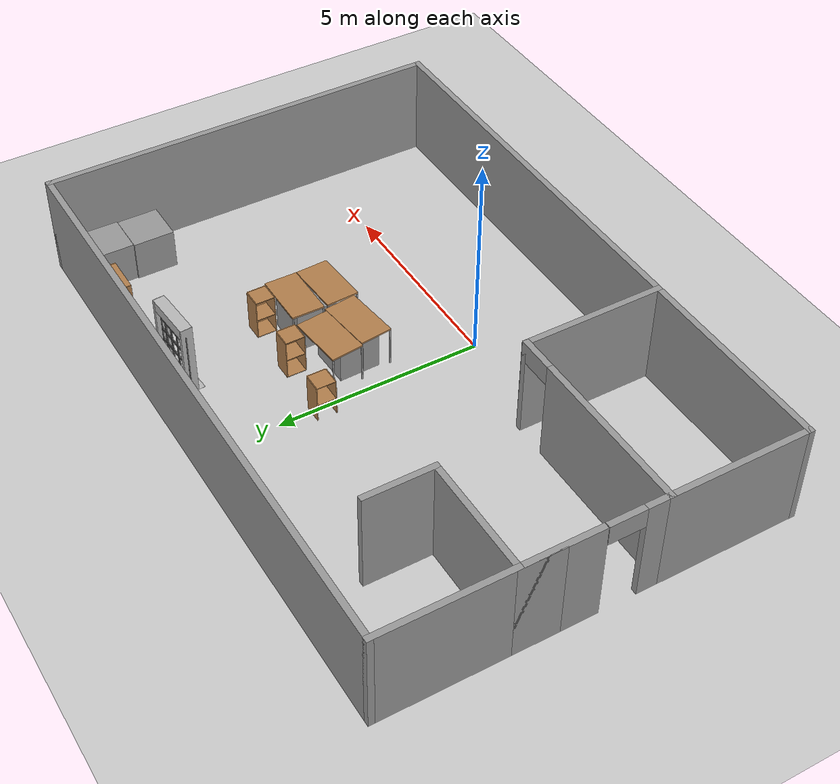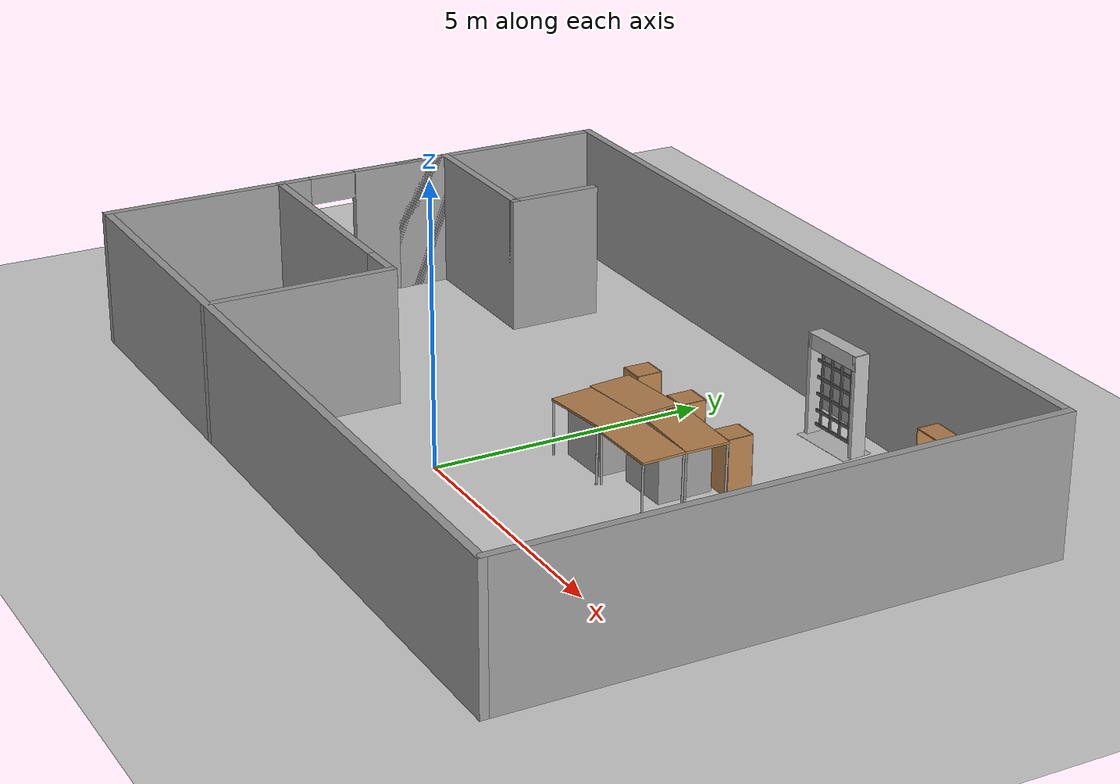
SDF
<sdf version="1.6">
 <world name="default">
  <model name="ground_plane">
   <static>1</static>
   <link name="link">
    <collision name="collision">
     <geometry><plane><normal>0 0 1</normal><size>100 100</size></plane></geometry>
     <surface><friction><ode><mu>100</mu><mu2>50</mu2></ode></friction></surface>
    </collision>
    <visual name="visual">
     <cast_shadows>0</cast_shadows>
     <geometry><plane><normal>0 0 1</normal><size>100 100</size></plane></geometry>
     <material>
      <script><uri>file://media/materials/scripts/gazebo.material</uri><name>Gazebo/Grey</name></script>
     </material>
    </visual>
   </link>
  </model>
  <model name="table_7_clone_0">
   <static>0</static>
   <link name="link">
    <collision name="surface">
     <pose>0 0 1 0 -0 0</pose>
     <geometry><box><size>1.5 0.8 0.03</size></box></geometry>
     <surface><friction><ode><mu>0.6</mu><mu2>0.6</mu2></ode></friction></surface>
    </collision>
    <visual name="visual1">
     <pose>0 0 1 0 -0 0</pose>
     <geometry><box><size>1.4 0.8 0.04</size></box></geometry>
     <material>
      <script><uri>file://media/materials/scripts/gazebo.material</uri><name>Gazebo/Wood</name></script>
     </material>
    </visual>
    <collision name="front_left_leg">
     <pose>0.68 0.38 0.5 0 -0 0</pose>
     <geometry><cylinder><radius>0.02</radius><length>1</length></cylinder></geometry>
    </collision>
    <visual name="front_left_leg">
     <pose>0.68 0.38 0.5 0 -0 0</pose>
     <geometry><cylinder><radius>0.02</radius><length>1</length></cylinder></geometry>
     <material>
      <script><uri>file://media/materials/scripts/gazebo.material</uri><name>Gazebo/Grey</name></script>
     </material>
    </visual>
    <collision name="front_right_leg">
     <pose>0.68 -0.38 0.5 0 -0 0</pose>
     <geometry><cylinder><radius>0.02</radius><length>1</length></cylinder></geometry>
    </collision>
    <visual name="front_right_leg">
     <pose>0.68 -0.38 0.5 0 -0 0</pose>
     <geometry><cylinder><radius>0.02</radius><length>1</length></cylinder></geometry>
     <material>
      <script><uri>file://media/materials/scripts/gazebo.material</uri><name>Gazebo/Grey</name></script>
     </material>
    </visual>
    <collision name="back_right_leg">
     <pose>-0.68 -0.38 0.5 0 -0 0</pose>
     <geometry><cylinder><radius>0.02</radius><length>1</length></cylinder></geometry>
    </collision>
    <visual name="back_right_leg">
     <pose>-0.68 -0.38 0.5 0 -0 0</pose>
     <geometry><cylinder><radius>0.02</radius><length>1</length></cylinder></geometry>
     <material>
      <script><uri>file://media/materials/scripts/gazebo.material</uri><name>Gazebo/Grey</name></script>
     </material>
    </visual>
    <collision name="back_left_leg">
     <pose>-0.68 0.38 0.5 0 -0 0</pose>
     <geometry><cylinder><radius>0.02</radius><length>1</length></cylinder></geometry>
    </collision>
    <visual name="back_left_leg">
     <pose>-0.68 0.38 0.5 0 -0 0</pose>
     <geometry><cylinder><radius>0.02</radius><length>1</length></cylinder></geometry>
     <material>
      <script><uri>file://media/materials/scripts/gazebo.material</uri><name>Gazebo/Grey</name></script>
     </material>
    </visual>
    <inertial>
     <inertia><ixx>1</ixx><ixy>0</ixy><ixz>0</ixz><iyy>1</iyy><iyz>0</iyz><izz>1</izz></inertia>
     <mass>1</mass>
    </inertial>
   </link>
   <pose>0.985844 3.1842 0.014959 -0.000606 1.8e-05 0.105898</pose>
  </model>
  <model name="table_7_clone_1">
   <static>0</static>
   <link name="link">
    <collision name="surface">
     <pose>0 0 1 0 -0 0</pose>
     <geometry><box><size>1.5 0.8 0.03</size></box></geometry>
     <surface><friction><ode><mu>0.6</mu><mu2>0.6</mu2></ode></friction></surface>
    </collision>
    <visual name="visual1">
     <pose>0 0 1 0 -0 0</pose>
     <geometry><box><size>1.4 0.8 0.04</size></box></geometry>
     <material>
      <script><uri>file://media/materials/scripts/gazebo.material</uri><name>Gazebo/Wood</name></script>
     </material>
    </visual>
    <collision name="front_left_leg">
     <pose>0.68 0.38 0.5 0 -0 0</pose>
     <geometry><cylinder><radius>0.02</radius><length>1</length></cylinder></geometry>
    </collision>
    <visual name="front_left_leg">
     <pose>0.68 0.38 0.5 0 -0 0</pose>
     <geometry><cylinder><radius>0.02</radius><length>1</length></cylinder></geometry>
     <material>
      <script><uri>file://media/materials/scripts/gazebo.material</uri><name>Gazebo/Grey</name></script>
     </material>
    </visual>
    <collision name="front_right_leg">
     <pose>0.68 -0.38 0.5 0 -0 0</pose>
     <geometry><cylinder><radius>0.02</radius><length>1</length></cylinder></geometry>
    </collision>
    <visual name="front_right_leg">
     <pose>0.68 -0.38 0.5 0 -0 0</pose>
     <geometry><cylinder><radius>0.02</radius><length>1</length></cylinder></geometry>
     <material>
      <script><uri>file://media/materials/scripts/gazebo.material</uri><name>Gazebo/Grey</name></script>
     </material>
    </visual>
    <collision name="back_right_leg">
     <pose>-0.68 -0.38 0.5 0 -0 0</pose>
     <geometry><cylinder><radius>0.02</radius><length>1</length></cylinder></geometry>
    </collision>
    <visual name="back_right_leg">
     <pose>-0.68 -0.38 0.5 0 -0 0</pose>
     <geometry><cylinder><radius>0.02</radius><length>1</length></cylinder></geometry>
     <material>
      <script><uri>file://media/materials/scripts/gazebo.material</uri><name>Gazebo/Grey</name></script>
     </material>
    </visual>
    <collision name="back_left_leg">
     <pose>-0.68 0.38 0.5 0 -0 0</pose>
     <geometry><cylinder><radius>0.02</radius><length>1</length></cylinder></geometry>
    </collision>
    <visual name="back_left_leg">
     <pose>-0.68 0.38 0.5 0 -0 0</pose>
     <geometry><cylinder><radius>0.02</radius><length>1</length></cylinder></geometry>
     <material>
      <script><uri>file://media/materials/scripts/gazebo.material</uri><name>Gazebo/Grey</name></script>
     </material>
    </visual>
    <inertial>
     <inertia><ixx>1</ixx><ixy>0</ixy><ixz>0</ixz><iyy>1</iyy><iyz>0</iyz><izz>1</izz></inertia>
     <mass>1</mass>
    </inertial>
   </link>
   <pose>1.1351 2.39038 0.014996 7e-06 3e-06 0.114239</pose>
  </model>
  <model name="bookshelf">
   <static>1</static>
   <link name="link">
    <inertial><mass>1</mass></inertial>
    <collision name="back">
     <pose>0 0.005 0.6 0 -0 0</pose>
     <geometry><box><size>0.9 0.01 1.2</size></box></geometry>
    </collision>
    <visual name="visual1">
     <pose>0 0.005 0.6 0 -0 0</pose>
     <geometry><box><size>0.9 0.01 1.2</size></box></geometry>
     <material>
      <script><uri>file://media/materials/scripts/gazebo.material</uri><name>Gazebo/Wood</name></script>
     </material>
    </visual>
    <collision name="left_side">
     <pose>0.45 -0.195 0.6 0 -0 0</pose>
     <geometry><box><size>0.02 0.4 1.2</size></box></geometry>
    </collision>
    <visual name="visual2">
     <pose>0.45 -0.195 0.6 0 -0 0</pose>
     <geometry><box><size>0.02 0.4 1.2</size></box></geometry>
     <material>
      <script><uri>file://media/materials/scripts/gazebo.material</uri><name>Gazebo/Wood</name></script>
     </material>
    </visual>
    <collision name="right_side">
     <pose>-0.45 -0.195 0.6 0 -0 0</pose>
     <geometry><box><size>0.02 0.4 1.2</size></box></geometry>
    </collision>
    <visual name="visual3">
     <pose>-0.45 -0.195 0.6 0 -0 0</pose>
     <geometry><box><size>0.02 0.4 1.2</size></box></geometry>
     <material>
      <script><uri>file://media/materials/scripts/gazebo.material</uri><name>Gazebo/Wood</name></script>
     </material>
    </visual>
    <collision name="bottom">
     <pose>0 -0.195 0.03 0 -0 0</pose>
     <geometry><box><size>0.88 0.4 0.06</size></box></geometry>
    </collision>
    <visual name="visual4">
     <pose>0 -0.195 0.03 0 -0 0</pose>
     <geometry><box><size>0.88 0.4 0.06</size></box></geometry>
     <material>
      <script><uri>file://media/materials/scripts/gazebo.material</uri><name>Gazebo/Wood</name></script>
     </material>
    </visual>
    <collision name="top">
     <pose>0 -0.195 1.19 0 -0 0</pose>
     <geometry><box><size>0.88 0.4 0.02</size></box></geometry>
    </collision>
    <visual name="visual5">
     <pose>0 -0.195 1.19 0 -0 0</pose>
     <geometry><box><size>0.88 0.4 0.02</size></box></geometry>
     <material>
      <script><uri>file://media/materials/scripts/gazebo.material</uri><name>Gazebo/Wood</name></script>
     </material>
    </visual>
    <collision name="low_shelf">
     <pose>0 -0.195 0.43 0 -0 0</pose>
     <geometry><box><size>0.88 0.4 0.02</size></box></geometry>
    </collision>
    <visual name="visual6">
     <pose>0 -0.195 0.43 0 -0 0</pose>
     <geometry><box><size>0.88 0.4 0.02</size></box></geometry>
     <material>
      <script><uri>file://media/materials/scripts/gazebo.material</uri><name>Gazebo/Wood</name></script>
     </material>
    </visual>
    <collision name="high_shelf">
     <pose>0 -0.195 0.8 0 -0 0</pose>
     <geometry><box><size>0.88 0.4 0.02</size></box></geometry>
    </collision>
    <visual name="visual7">
     <pose>0 -0.195 0.8 0 -0 0</pose>
     <geometry><box><size>0.88 0.4 0.02</size></box></geometry>
     <material>
      <script><uri>file://media/materials/scripts/gazebo.material</uri><name>Gazebo/Wood</name></script>
     </material>
    </visual>
   </link>
   <pose>4.99044 6.73324 0 0 -0 0</pose>
  </model>
  <model name="table_7_clone_clone_0">
   <static>0</static>
   <link name="link">
    <collision name="surface">
     <pose>0 0 1 0 -0 0</pose>
     <geometry><box><size>1.5 0.8 0.03</size></box></geometry>
     <surface><friction><ode><mu>0.6</mu><mu2>0.6</mu2></ode></friction></surface>
    </collision>
    <visual name="visual1">
     <pose>0 0 1 0 -0 0</pose>
     <geometry><box><size>1.4 0.8 0.04</size></box></geometry>
     <material>
      <script><uri>file://media/materials/scripts/gazebo.material</uri><name>Gazebo/Wood</name></script>
     </material>
    </visual>
    <collision name="front_left_leg">
     <pose>0.68 0.38 0.5 0 -0 0</pose>
     <geometry><cylinder><radius>0.02</radius><length>1</length></cylinder></geometry>
    </collision>
    <visual name="front_left_leg">
     <pose>0.68 0.38 0.5 0 -0 0</pose>
     <geometry><cylinder><radius>0.02</radius><length>1</length></cylinder></geometry>
     <material>
      <script><uri>file://media/materials/scripts/gazebo.material</uri><name>Gazebo/Grey</name></script>
     </material>
    </visual>
    <collision name="front_right_leg">
     <pose>0.68 -0.38 0.5 0 -0 0</pose>
     <geometry><cylinder><radius>0.02</radius><length>1</length></cylinder></geometry>
    </collision>
    <visual name="front_right_leg">
     <pose>0.68 -0.38 0.5 0 -0 0</pose>
     <geometry><cylinder><radius>0.02</radius><length>1</length></cylinder></geometry>
     <material>
      <script><uri>file://media/materials/scripts/gazebo.material</uri><name>Gazebo/Grey</name></script>
     </material>
    </visual>
    <collision name="back_right_leg">
     <pose>-0.68 -0.38 0.5 0 -0 0</pose>
     <geometry><cylinder><radius>0.02</radius><length>1</length></cylinder></geometry>
    </collision>
    <visual name="back_right_leg">
     <pose>-0.68 -0.38 0.5 0 -0 0</pose>
     <geometry><cylinder><radius>0.02</radius><length>1</length></cylinder></geometry>
     <material>
      <script><uri>file://media/materials/scripts/gazebo.material</uri><name>Gazebo/Grey</name></script>
     </material>
    </visual>
    <collision name="back_left_leg">
     <pose>-0.68 0.38 0.5 0 -0 0</pose>
     <geometry><cylinder><radius>0.02</radius><length>1</length></cylinder></geometry>
    </collision>
    <visual name="back_left_leg">
     <pose>-0.68 0.38 0.5 0 -0 0</pose>
     <geometry><cylinder><radius>0.02</radius><length>1</length></cylinder></geometry>
     <material>
      <script><uri>file://media/materials/scripts/gazebo.material</uri><name>Gazebo/Grey</name></script>
     </material>
    </visual>
    <inertial>
     <inertia><ixx>1</ixx><ixy>0</ixy><ixz>0</ixz><iyy>1</iyy><iyz>0</iyz><izz>1</izz></inertia>
     <mass>1</mass>
    </inertial>
   </link>
   <pose>2.53509 2.3984 0.025611 0.001087 0.030876 0.043374</pose>
  </model>
  <model name="cabinet_clone_1">
   <static>1</static>
   <link name="cabinet_bottom_plate">
    <inertial>
     <pose>0 0 -1 0 -0 0</pose>
     <inertia><ixx>2.05</ixx><ixy>0</ixy><ixz>0</ixz><iyy>2.05</iyy><iyz>0</iyz><izz>2.05</izz></inertia>
     <mass>25</mass>
    </inertial>
    <collision name="cabinet_bottom_plate_geom">
     <pose>0 0 0.01 0 -0 0</pose>
     <geometry><box><size>0.45 0.45 0.02</size></box></geometry>
    </collision>
    <visual name="cabinet_bottom_plate_geom_visual">
     <pose>0 0 0.01 0 -0 0</pose>
     <geometry><box><size>0.45 0.45 0.02</size></box></geometry>
     <material>
      <script><uri>file://media/materials/scripts/gazebo.material</uri><name>Gazebo/Wood</name></script>
     </material>
    </visual>
    <collision name="cabinet_bottom_plate_geom_cabinet_back_plate">
     <pose>0.235 0 0.51 0 -0 0</pose>
     <geometry><box><size>0.02 0.45 1.02</size></box></geometry>
    </collision>
    <visual name="cabinet_bottom_plate_geom_cabinet_back_plate_visual">
     <pose>0.235 0 0.51 0 -0 0</pose>
     <geometry><box><size>0.02 0.45 1.02</size></box></geometry>
     <material>
      <script><uri>file://media/materials/scripts/gazebo.material</uri><name>Gazebo/Wood</name></script>
     </material>
    </visual>
    <collision name="cabinet_bottom_plate_geom_cabinet_left_plate">
     <pose>0 0.235 0.51 0 -0 0</pose>
     <geometry><box><size>0.45 0.02 1.02</size></box></geometry>
    </collision>
    <visual name="cabinet_bottom_plate_geom_cabinet_left_plate_visual">
     <pose>0 0.235 0.51 0 -0 0</pose>
     <geometry><box><size>0.45 0.02 1.02</size></box></geometry>
     <material>
      <script><uri>file://media/materials/scripts/gazebo.material</uri><name>Gazebo/Wood</name></script>
     </material>
    </visual>
    <collision name="cabinet_bottom_plate_geom_cabinet_middle_plate">
     <pose>0 0 0.51 0 -0 0</pose>
     <geometry><box><size>0.45 0.45 0.02</size></box></geometry>
    </collision>
    <visual name="cabinet_bottom_plate_geom_cabinet_middle_plate_visual">
     <pose>0 0 0.51 0 -0 0</pose>
     <geometry><box><size>0.45 0.45 0.02</size></box></geometry>
     <material>
      <script><uri>file://media/materials/scripts/gazebo.material</uri><name>Gazebo/Wood</name></script>
     </material>
    </visual>
    <collision name="cabinet_bottom_plate_geom_cabinet_right_plate">
     <pose>0 -0.235 0.51 0 -0 0</pose>
     <geometry><box><size>0.45 0.02 1.02</size></box></geometry>
    </collision>
    <visual name="cabinet_bottom_plate_geom_cabinet_right_plate_visual">
     <pose>0 -0.235 0.51 0 -0 0</pose>
     <geometry><box><size>0.45 0.02 1.02</size></box></geometry>
     <material>
      <script><uri>file://media/materials/scripts/gazebo.material</uri><name>Gazebo/Wood</name></script>
     </material>
    </visual>
    <collision name="cabinet_bottom_plate_geom_cabinet_top_plate">
     <pose>0 0 1.01 0 -0 0</pose>
     <geometry><box><size>0.45 0.45 0.02</size></box></geometry>
    </collision>
    <visual name="cabinet_bottom_plate_geom_cabinet_top_plate_visual">
     <pose>0 0 1.01 0 -0 0</pose>
     <geometry><box><size>0.45 0.45 0.02</size></box></geometry>
     <material>
      <script><uri>file://media/materials/scripts/gazebo.material</uri><name>Gazebo/Wood</name></script>
     </material>
    </visual>
   </link>
   <pose>2.9573 3.88305 0 0 -0 0</pose>
  </model>
  <model name="cabinet_clone_3">
   <static>1</static>
   <link name="cabinet_bottom_plate">
    <inertial>
     <pose>0 0 -1 0 -0 0</pose>
     <inertia><ixx>2.05</ixx><ixy>0</ixy><ixz>0</ixz><iyy>2.05</iyy><iyz>0</iyz><izz>2.05</izz></inertia>
     <mass>25</mass>
    </inertial>
    <collision name="cabinet_bottom_plate_geom">
     <pose>0 0 0.01 0 -0 0</pose>
     <geometry><box><size>0.45 0.45 0.02</size></box></geometry>
    </collision>
    <visual name="cabinet_bottom_plate_geom_visual">
     <pose>0 0 0.01 0 -0 0</pose>
     <geometry><box><size>0.45 0.45 0.02</size></box></geometry>
     <material>
      <script><uri>file://media/materials/scripts/gazebo.material</uri><name>Gazebo/Wood</name></script>
     </material>
    </visual>
    <collision name="cabinet_bottom_plate_geom_cabinet_back_plate">
     <pose>0.235 0 0.51 0 -0 0</pose>
     <geometry><box><size>0.02 0.45 1.02</size></box></geometry>
    </collision>
    <visual name="cabinet_bottom_plate_geom_cabinet_back_plate_visual">
     <pose>0.235 0 0.51 0 -0 0</pose>
     <geometry><box><size>0.02 0.45 1.02</size></box></geometry>
     <material>
      <script><uri>file://media/materials/scripts/gazebo.material</uri><name>Gazebo/Wood</name></script>
     </material>
    </visual>
    <collision name="cabinet_bottom_plate_geom_cabinet_left_plate">
     <pose>0 0.235 0.51 0 -0 0</pose>
     <geometry><box><size>0.45 0.02 1.02</size></box></geometry>
    </collision>
    <visual name="cabinet_bottom_plate_geom_cabinet_left_plate_visual">
     <pose>0 0.235 0.51 0 -0 0</pose>
     <geometry><box><size>0.45 0.02 1.02</size></box></geometry>
     <material>
      <script><uri>file://media/materials/scripts/gazebo.material</uri><name>Gazebo/Wood</name></script>
     </material>
    </visual>
    <collision name="cabinet_bottom_plate_geom_cabinet_middle_plate">
     <pose>0 0 0.51 0 -0 0</pose>
     <geometry><box><size>0.45 0.45 0.02</size></box></geometry>
    </collision>
    <visual name="cabinet_bottom_plate_geom_cabinet_middle_plate_visual">
     <pose>0 0 0.51 0 -0 0</pose>
     <geometry><box><size>0.45 0.45 0.02</size></box></geometry>
     <material>
      <script><uri>file://media/materials/scripts/gazebo.material</uri><name>Gazebo/Wood</name></script>
     </material>
    </visual>
    <collision name="cabinet_bottom_plate_geom_cabinet_right_plate">
     <pose>0 -0.235 0.51 0 -0 0</pose>
     <geometry><box><size>0.45 0.02 1.02</size></box></geometry>
    </collision>
    <visual name="cabinet_bottom_plate_geom_cabinet_right_plate_visual">
     <pose>0 -0.235 0.51 0 -0 0</pose>
     <geometry><box><size>0.45 0.02 1.02</size></box></geometry>
     <material>
      <script><uri>file://media/materials/scripts/gazebo.material</uri><name>Gazebo/Wood</name></script>
     </material>
    </visual>
    <collision name="cabinet_bottom_plate_geom_cabinet_top_plate">
     <pose>0 0 1.01 0 -0 0</pose>
     <geometry><box><size>0.45 0.45 0.02</size></box></geometry>
    </collision>
    <visual name="cabinet_bottom_plate_geom_cabinet_top_plate_visual">
     <pose>0 0 1.01 0 -0 0</pose>
     <geometry><box><size>0.45 0.45 0.02</size></box></geometry>
     <material>
      <script><uri>file://media/materials/scripts/gazebo.material</uri><name>Gazebo/Wood</name></script>
     </material>
    </visual>
   </link>
   <pose>-0.048273 3.95202 -0.089414 0 -0 0</pose>
  </model>
  <model name="unit_box_0">
   <pose>6.56989 6.13784 0.499995 0 1e-05 -0.003331</pose>
   <link name="link">
    <inertial>
     <mass>1</mass>
     <inertia>
      <ixx>0.166667</ixx>
      <ixy>0</ixy>
      <ixz>0</ixz>
      <iyy>0.166667</iyy>
      <iyz>0</iyz>
      <izz>0.166667</izz>
     </inertia>
    </inertial>
    <collision name="collision"><geometry><box><size>1 1 1</size></box></geometry></collision>
    <visual name="visual">
     <geometry><box><size>1 1 1</size></box></geometry>
     <material>
      <script><name>Gazebo/Grey</name><uri>file://media/materials/scripts/gazebo.material</uri></script>
     </material>
    </visual>
   </link>
  </model>
  <model name="unit_box_1">
   <pose>6.5382 5.13544 0.499995 0 1e-05 0.001654</pose>
   <link name="link">
    <inertial>
     <mass>1</mass>
     <inertia>
      <ixx>0.166667</ixx>
      <ixy>0</ixy>
      <ixz>0</ixz>
      <iyy>0.166667</iyy>
      <iyz>0</iyz>
      <izz>0.166667</izz>
     </inertia>
    </inertial>
    <collision name="collision"><geometry><box><size>1 1 1</size></box></geometry></collision>
    <visual name="visual">
     <geometry><box><size>1 1 1</size></box></geometry>
     <material>
      <script><name>Gazebo/Grey</name><uri>file://media/materials/scripts/gazebo.material</uri></script>
     </material>
    </visual>
   </link>
  </model>
  <model name="unit_box_7">
   <pose>1.05375 2.69276 0.499963 -1.6e-05 -2.5e-05 0.028291</pose>
   <link name="link">
    <inertial>
     <mass>1</mass>
     <inertia>
      <ixx>0.166667</ixx>
      <ixy>0</ixy>
      <ixz>0</ixz>
      <iyy>0.166667</iyy>
      <iyz>0</iyz>
      <izz>0.166667</izz>
     </inertia>
    </inertial>
    <collision name="collision"><geometry><box><size>1 1 1</size></box></geometry></collision>
    <visual name="visual">
     <geometry><box><size>1 1 1</size></box></geometry>
     <material>
      <script><name>Gazebo/Grey</name><uri>file://media/materials/scripts/gazebo.material</uri></script>
     </material>
    </visual>
   </link>
  </model>
  <model name="unit_box_8_0">
   <pose>2.38387 3.03991 0.499969 -7e-06 2.3e-05 0.018025</pose>
   <link name="link">
    <inertial>
     <mass>1</mass>
     <inertia>
      <ixx>0.166667</ixx>
      <ixy>0</ixy>
      <ixz>0</ixz>
      <iyy>0.166667</iyy>
      <iyz>0</iyz>
      <izz>0.166667</izz>
     </inertia>
    </inertial>
    <collision name="collision"><geometry><box><size>1 1 1</size></box></geometry></collision>
    <visual name="visual">
     <geometry><box><size>1 1 1</size></box></geometry>
     <material>
      <script><name>Gazebo/Grey</name><uri>file://media/materials/scripts/gazebo.material</uri></script>
     </material>
    </visual>
   </link>
  </model>
  <model name="table_7_clone_clone_0_clone">
   <static>0</static>
   <link name="link">
    <collision name="surface">
     <pose>0 0 1 0 -0 0</pose>
     <geometry><box><size>1.5 0.8 0.03</size></box></geometry>
     <surface><friction><ode><mu>0.6</mu><mu2>0.6</mu2></ode></friction></surface>
    </collision>
    <visual name="visual1">
     <pose>0 0 1 0 -0 0</pose>
     <geometry><box><size>1.4 0.8 0.04</size></box></geometry>
     <material>
      <script><uri>file://media/materials/scripts/gazebo.material</uri><name>Gazebo/Wood</name></script>
     </material>
    </visual>
    <collision name="front_left_leg">
     <pose>0.68 0.38 0.5 0 -0 0</pose>
     <geometry><cylinder><radius>0.02</radius><length>1</length></cylinder></geometry>
    </collision>
    <visual name="front_left_leg">
     <pose>0.68 0.38 0.5 0 -0 0</pose>
     <geometry><cylinder><radius>0.02</radius><length>1</length></cylinder></geometry>
     <material>
      <script><uri>file://media/materials/scripts/gazebo.material</uri><name>Gazebo/Grey</name></script>
     </material>
    </visual>
    <collision name="front_right_leg">
     <pose>0.68 -0.38 0.5 0 -0 0</pose>
     <geometry><cylinder><radius>0.02</radius><length>1</length></cylinder></geometry>
    </collision>
    <visual name="front_right_leg">
     <pose>0.68 -0.38 0.5 0 -0 0</pose>
     <geometry><cylinder><radius>0.02</radius><length>1</length></cylinder></geometry>
     <material>
      <script><uri>file://media/materials/scripts/gazebo.material</uri><name>Gazebo/Grey</name></script>
     </material>
    </visual>
    <collision name="back_right_leg">
     <pose>-0.68 -0.38 0.5 0 -0 0</pose>
     <geometry><cylinder><radius>0.02</radius><length>1</length></cylinder></geometry>
    </collision>
    <visual name="back_right_leg">
     <pose>-0.68 -0.38 0.5 0 -0 0</pose>
     <geometry><cylinder><radius>0.02</radius><length>1</length></cylinder></geometry>
     <material>
      <script><uri>file://media/materials/scripts/gazebo.material</uri><name>Gazebo/Grey</name></script>
     </material>
    </visual>
    <collision name="back_left_leg">
     <pose>-0.68 0.38 0.5 0 -0 0</pose>
     <geometry><cylinder><radius>0.02</radius><length>1</length></cylinder></geometry>
    </collision>
    <visual name="back_left_leg">
     <pose>-0.68 0.38 0.5 0 -0 0</pose>
     <geometry><cylinder><radius>0.02</radius><length>1</length></cylinder></geometry>
     <material>
      <script><uri>file://media/materials/scripts/gazebo.material</uri><name>Gazebo/Grey</name></script>
     </material>
    </visual>
    <inertial>
     <inertia><ixx>1</ixx><ixy>0</ixy><ixz>0</ixz><iyy>1</iyy><iyz>0</iyz><izz>1</izz></inertia>
     <mass>1</mass>
    </inertial>
   </link>
   <pose>2.52383 3.23958 0.024774 -0.000896 0.028548 -0.01225</pose>
  </model>
  <model name="cabinet_clone_1_clone">
   <static>1</static>
   <link name="cabinet_bottom_plate">
    <inertial>
     <pose>0 0 -1 0 -0 0</pose>
     <inertia><ixx>2.05</ixx><ixy>0</ixy><ixz>0</ixz><iyy>2.05</iyy><iyz>0</iyz><izz>2.05</izz></inertia>
     <mass>25</mass>
    </inertial>
    <collision name="cabinet_bottom_plate_geom">
     <pose>0 0 0.01 0 -0 0</pose>
     <geometry><box><size>0.45 0.45 0.02</size></box></geometry>
    </collision>
    <visual name="cabinet_bottom_plate_geom_visual">
     <pose>0 0 0.01 0 -0 0</pose>
     <geometry><box><size>0.45 0.45 0.02</size></box></geometry>
     <material>
      <script><uri>file://media/materials/scripts/gazebo.material</uri><name>Gazebo/Wood</name></script>
     </material>
    </visual>
    <collision name="cabinet_bottom_plate_geom_cabinet_back_plate">
     <pose>0.235 0 0.51 0 -0 0</pose>
     <geometry><box><size>0.02 0.45 1.02</size></box></geometry>
    </collision>
    <visual name="cabinet_bottom_plate_geom_cabinet_back_plate_visual">
     <pose>0.235 0 0.51 0 -0 0</pose>
     <geometry><box><size>0.02 0.45 1.02</size></box></geometry>
     <material>
      <script><uri>file://media/materials/scripts/gazebo.material</uri><name>Gazebo/Wood</name></script>
     </material>
    </visual>
    <collision name="cabinet_bottom_plate_geom_cabinet_left_plate">
     <pose>0 0.235 0.51 0 -0 0</pose>
     <geometry><box><size>0.45 0.02 1.02</size></box></geometry>
    </collision>
    <visual name="cabinet_bottom_plate_geom_cabinet_left_plate_visual">
     <pose>0 0.235 0.51 0 -0 0</pose>
     <geometry><box><size>0.45 0.02 1.02</size></box></geometry>
     <material>
      <script><uri>file://media/materials/scripts/gazebo.material</uri><name>Gazebo/Wood</name></script>
     </material>
    </visual>
    <collision name="cabinet_bottom_plate_geom_cabinet_middle_plate">
     <pose>0 0 0.51 0 -0 0</pose>
     <geometry><box><size>0.45 0.45 0.02</size></box></geometry>
    </collision>
    <visual name="cabinet_bottom_plate_geom_cabinet_middle_plate_visual">
     <pose>0 0 0.51 0 -0 0</pose>
     <geometry><box><size>0.45 0.45 0.02</size></box></geometry>
     <material>
      <script><uri>file://media/materials/scripts/gazebo.material</uri><name>Gazebo/Wood</name></script>
     </material>
    </visual>
    <collision name="cabinet_bottom_plate_geom_cabinet_right_plate">
     <pose>0 -0.235 0.51 0 -0 0</pose>
     <geometry><box><size>0.45 0.02 1.02</size></box></geometry>
    </collision>
    <visual name="cabinet_bottom_plate_geom_cabinet_right_plate_visual">
     <pose>0 -0.235 0.51 0 -0 0</pose>
     <geometry><box><size>0.45 0.02 1.02</size></box></geometry>
     <material>
      <script><uri>file://media/materials/scripts/gazebo.material</uri><name>Gazebo/Wood</name></script>
     </material>
    </visual>
    <collision name="cabinet_bottom_plate_geom_cabinet_top_plate">
     <pose>0 0 1.01 0 -0 0</pose>
     <geometry><box><size>0.45 0.45 0.02</size></box></geometry>
    </collision>
    <visual name="cabinet_bottom_plate_geom_cabinet_top_plate_visual">
     <pose>0 0 1.01 0 -0 0</pose>
     <geometry><box><size>0.45 0.45 0.02</size></box></geometry>
     <material>
      <script><uri>file://media/materials/scripts/gazebo.material</uri><name>Gazebo/Wood</name></script>
     </material>
    </visual>
   </link>
   <pose>1.45485 3.91013 0 0 -0 0</pose>
  </model>
  <model name="frc2016_portcullis_0_clone">
   <link name="base">
    <inertial>
     <mass>50</mass>
     <pose>0 0 1.02941 0 -0 0</pose>
     <inertia><ixx>3.81711</ixx><ixy>0</ixy><ixz>0</ixz><iyy>4.87698</iyy><iyz>0</iyz><izz>1.6283</izz></inertia>
    </inertial>
    <visual name="platform">
     <pose>0 0 0.07284 0 -0 0</pose>
     <geometry><box><size>1.27 0.5842 0.003175</size></box></geometry>
    </visual>
    <collision name="platform">
     <pose>0 0 0.07284 0 -0 0</pose>
     <geometry><box><size>1.27 0.5842 0.003175</size></box></geometry>
    </collision>
    <visual name="left_column">
     <pose>0.59284 0 0.99042 0 -0 0</pose>
     <geometry><box><size>0.08375 0.28575 1.83198</size></box></geometry>
    </visual>
    <collision name="left_column">
     <pose>0.59284 0 0.99042 0 -0 0</pose>
     <geometry><box><size>0.08375 0.28575 1.83198</size></box></geometry>
    </collision>
    <visual name="right_column">
     <pose>-0.57759 0 0.99042 0 -0 0</pose>
     <geometry><box><size>0.08375 0.28575 1.83198</size></box></geometry>
    </visual>
    <collision name="right_column">
     <pose>-0.57759 0 0.99042 0 -0 0</pose>
     <geometry><box><size>0.08375 0.28575 1.83198</size></box></geometry>
    </collision>
    <visual name="top">
     <pose>-0.00034 0 1.77722 0 -0 0</pose>
     <geometry><box><size>1.22962 0.28575 0.26657</size></box></geometry>
    </visual>
    <collision name="top">
     <pose>-0.00034 0 1.77722 0 -0 0</pose>
     <geometry><box><size>1.22962 0.28575 0.26657</size></box></geometry>
    </collision>
    <visual name="castor1">
     <pose>-0.45651 -0.16234 0.03272 0 -0 0</pose>
     <geometry><sphere><radius>0.03272</radius></sphere></geometry>
    </visual>
    <collision name="castor1">
     <pose>-0.45651 -0.16234 0.03272 0 -0 0</pose>
     <geometry><sphere><radius>0.03272</radius></sphere></geometry>
    </collision>
    <visual name="castor2">
     <pose>-0.27883 0.21836 0.03272 0 -0 0</pose>
     <geometry><sphere><radius>0.03272</radius></sphere></geometry>
    </visual>
    <collision name="castor2">
     <pose>-0.27883 0.21836 0.03272 0 -0 0</pose>
     <geometry><sphere><radius>0.03272</radius></sphere></geometry>
    </collision>
    <visual name="castor3">
     <pose>0.28083 0.21906 0.03272 0 -0 0</pose>
     <geometry><sphere><radius>0.03272</radius></sphere></geometry>
    </visual>
    <collision name="castor3">
     <pose>0.28083 0.21906 0.03272 0 -0 0</pose>
     <geometry><sphere><radius>0.03272</radius></sphere></geometry>
    </collision>
    <visual name="castor4">
     <pose>0.45871 -0.16186 0.03272 0 -0 0</pose>
     <geometry><sphere><radius>0.03272</radius></sphere></geometry>
    </visual>
    <collision name="castor4">
     <pose>0.45871 -0.16186 0.03272 0 -0 0</pose>
     <geometry><sphere><radius>0.03272</radius></sphere></geometry>
    </collision>
   </link>
   <link name="gate">
    <pose>-0.0287 0.02885 0.93327 0 -0 0</pose>
    <inertial>
     <mass>2</mass>
     <inertia><ixx>3.81711</ixx><ixy>0</ixy><ixz>0</ixz><iyy>4.87698</iyy><iyz>0</iyz><izz>1.6283</izz></inertia>
    </inertial>
    <collision name="collision"><geometry><box><size>1.1938 0.02496 1.45732</size></box></geometry></collision>
    <visual name="horz_1">
     <pose>0 0 -0.70326 0 -0 0</pose>
     <geometry><box><size>1.1938 0.02496 0.0508</size></box></geometry>
     <material><ambient>0.4 0.4 0.4 1</ambient><diffuse>0.4 0.4 0.4 1</diffuse></material>
    </visual>
    <visual name="horz_2">
     <pose>0 0 -0.44926 0 -0 0</pose>
     <geometry><box><size>1.1938 0.02496 0.0508</size></box></geometry>
     <material><ambient>0.4 0.4 0.4 1</ambient><diffuse>0.4 0.4 0.4 1</diffuse></material>
    </visual>
    <visual name="horz_3">
     <pose>0 0 -0.14517 0 -0 0</pose>
     <geometry><box><size>1.1938 0.02496 0.0508</size></box></geometry>
     <material><ambient>0.4 0.4 0.4 1</ambient><diffuse>0.4 0.4 0.4 1</diffuse></material>
    </visual>
    <visual name="horz_4">
     <pose>0 0 0.16034 0 -0 0</pose>
     <geometry><box><size>1.1938 0.02496 0.0508</size></box></geometry>
     <material><ambient>0.4 0.4 0.4 1</ambient><diffuse>0.4 0.4 0.4 1</diffuse></material>
    </visual>
    <visual name="horz_5">
     <pose>0 0 0.46514 0 -0 0</pose>
     <geometry><box><size>1.1938 0.02496 0.0508</size></box></geometry>
     <material><ambient>0.4 0.4 0.4 1</ambient><diffuse>0.4 0.4 0.4 1</diffuse></material>
    </visual>
    <visual name="horz_6">
     <pose>0 0 0.72994 0 -0 0</pose>
     <geometry><box><size>1.1938 0.02496 0.0508</size></box></geometry>
     <material><ambient>0.4 0.4 0.4 1</ambient><diffuse>0.4 0.4 0.4 1</diffuse></material>
    </visual>
    <visual name="vert_1">
     <pose>-0.58448 0 0 0 -0 0</pose>
     <geometry><box><size>0.02495 0.02496 1.45732</size></box></geometry>
     <material><ambient>0.4 0.4 0.4 1</ambient><diffuse>0.4 0.4 0.4 1</diffuse></material>
    </visual>
    <visual name="vert_2">
     <pose>-0.38128 0 0 0 -0 0</pose>
     <geometry><box><size>0.0508 0.02496 1.45732</size></box></geometry>
     <material><ambient>0.4 0.4 0.4 1</ambient><diffuse>0.4 0.4 0.4 1</diffuse></material>
    </visual>
    <visual name="vert_3">
     <pose>-0.12728 0 0 0 -0 0</pose>
     <geometry><box><size>0.0508 0.02496 1.45732</size></box></geometry>
     <material><ambient>0.4 0.4 0.4 1</ambient><diffuse>0.4 0.4 0.4 1</diffuse></material>
    </visual>
    <visual name="vert_4">
     <pose>0.12672 0 0 0 -0 0</pose>
     <geometry><box><size>0.0508 0.02496 1.45732</size></box></geometry>
     <material><ambient>0.4 0.4 0.4 1</ambient><diffuse>0.4 0.4 0.4 1</diffuse></material>
    </visual>
    <visual name="vert_5">
     <pose>0.38072 0 0 0 -0 0</pose>
     <geometry><box><size>0.0508 0.02496 1.45732</size></box></geometry>
     <material><ambient>0.4 0.4 0.4 1</ambient><diffuse>0.4 0.4 0.4 1</diffuse></material>
    </visual>
    <visual name="vert_6">
     <pose>0.58392 0 0 0 -0 0</pose>
     <geometry><box><size>0.02495 0.02496 1.45732</size></box></geometry>
     <material><ambient>0.4 0.4 0.4 1</ambient><diffuse>0.4 0.4 0.4 1</diffuse></material>
    </visual>
   </link>
   <joint name="joint" type="prismatic">
    <parent>base</parent>
    <child>gate</child>
    <axis>
     <xyz>0 0 1</xyz>
     <limit><lower>0</lower><upper>1</upper></limit>
     <use_parent_model_frame>0</use_parent_model_frame>
     <dynamics><spring_reference>0</spring_reference><spring_stiffness>0</spring_stiffness></dynamics>
    </axis>
   </joint>
   <pose>2.43854 6.21277 0 4e-06 2e-06 0.07072</pose>
  </model>
  <model name="office_building">
   <pose>-0.087449 2.08547 0 0 -0 0</pose>
   <link name="Wall_15">
    <collision name="Wall_15_Collision">
     <geometry><box><size>3.25 0.15 2.5</size></box></geometry>
     <pose>0 0 1.25 0 -0 0</pose>
    </collision>
    <visual name="Wall_15_Visual">
     <pose>0 0 1.25 0 -0 0</pose>
     <geometry><box><size>3.25 0.15 2.5</size></box></geometry>
     <material>
      <script><uri>file://media/materials/scripts/gazebo.material</uri><name>Gazebo/Grey</name></script>
      <ambient>1 1 1 1</ambient>
     </material>
    </visual>
    <pose>-7.425 3.375 0 0 0 -1.5708</pose>
   </link>
   <link name="Wall_16">
    <collision name="Wall_16_Collision">
     <geometry><box><size>3 0.15 2.5</size></box></geometry>
     <pose>0 0 1.25 0 -0 0</pose>
    </collision>
    <visual name="Wall_16_Visual">
     <pose>0 0 1.25 0 -0 0</pose>
     <geometry><box><size>3 0.15 2.5</size></box></geometry>
     <material>
      <script><uri>file://media/materials/scripts/gazebo.material</uri><name>Gazebo/Grey</name></script>
      <ambient>1 1 1 1</ambient>
     </material>
    </visual>
    <pose>-6 1.825 0 0 -0 0</pose>
   </link>
   <link name="Wall_17">
    <collision name="Wall_17_Collision">
     <geometry><box><size>1.75 0.15 2.5</size></box></geometry>
     <pose>0 0 1.25 0 -0 0</pose>
    </collision>
    <visual name="Wall_17_Visual">
     <pose>0 0 1.25 0 -0 0</pose>
     <geometry><box><size>1.75 0.15 2.5</size></box></geometry>
     <material>
      <script><uri>file://media/materials/scripts/gazebo.material</uri><name>Gazebo/Grey</name></script>
      <ambient>1 1 1 1</ambient>
     </material>
    </visual>
    <pose>-4.575 2.625 0 0 -0 1.5708</pose>
   </link>
   <link name="Wall_19">
    <collision name="Wall_19_Collision">
     <geometry><box><size>10 0.15 2.5</size></box></geometry>
     <pose>0 0 1.25 0 -0 0</pose>
    </collision>
    <visual name="Wall_19_Visual">
     <pose>0 0 1.25 0 -0 0</pose>
     <geometry><box><size>10 0.15 2.5</size></box></geometry>
     <material>
      <script><uri>file://media/materials/scripts/gazebo.material</uri><name>Gazebo/Grey</name></script>
      <ambient>1 1 1 1</ambient>
     </material>
    </visual>
    <pose>7.425 0 0 0 0 -1.5708</pose>
   </link>
   <link name="Wall_20">
    <collision name="Wall_20_Collision">
     <geometry><box><size>15 0.15 2.5</size></box></geometry>
     <pose>0 0 1.25 0 -0 0</pose>
    </collision>
    <visual name="Wall_20_Visual">
     <pose>0 0 1.25 0 -0 0</pose>
     <geometry><box><size>15 0.15 2.5</size></box></geometry>
     <material>
      <script><uri>file://media/materials/scripts/gazebo.material</uri><name>Gazebo/Grey</name></script>
      <ambient>1 1 1 1</ambient>
     </material>
    </visual>
    <pose>0 -4.925 0 0 -0 3.14159</pose>
   </link>
   <link name="Wall_21">
    <collision name="Wall_21_Collision">
     <geometry><box><size>3.5 0.15 2.5</size></box></geometry>
     <pose>0 0 1.25 0 -0 0</pose>
    </collision>
    <visual name="Wall_21_Visual">
     <pose>0 0 1.25 0 -0 0</pose>
     <geometry><box><size>3.5 0.15 2.5</size></box></geometry>
     <material>
      <script><uri>file://media/materials/scripts/gazebo.material</uri><name>Gazebo/Grey</name></script>
      <ambient>1 1 1 1</ambient>
     </material>
    </visual>
    <pose>-7.425 -3.25 0 0 -0 1.5708</pose>
   </link>
   <link name="Wall_22">
    <pose>-5 -1.575 0 0 -0 0</pose>
    <visual name="Wall_22_Visual_0">
     <pose>-0.454413 0 1.25 0 -0 0</pose>
     <geometry><box><size>4.09117 0.15 2.5</size></box></geometry>
     <material>
      <script><uri>file://media/materials/scripts/gazebo.material</uri><name>Gazebo/Grey</name></script>
      <ambient>1 1 1 1</ambient>
     </material>
    </visual>
    <collision name="Wall_22_Collision_0">
     <geometry><box><size>4.09117 0.15 2.5</size></box></geometry>
     <pose>-0.454413 0 1.25 0 -0 0</pose>
    </collision>
    <visual name="Wall_22_Visual_1">
     <pose>2.49559 0 1.25 0 -0 0</pose>
     <geometry><box><size>0.008827 0.15 2.5</size></box></geometry>
     <material>
      <script><uri>file://media/materials/scripts/gazebo.material</uri><name>Gazebo/Grey</name></script>
      <ambient>1 1 1 1</ambient>
     </material>
    </visual>
    <collision name="Wall_22_Collision_1">
     <geometry><box><size>0.008827 0.15 2.5</size></box></geometry>
     <pose>2.49559 0 1.25 0 -0 0</pose>
    </collision>
    <visual name="Wall_22_Visual_2">
     <pose>2.04117 0 2.25 0 -0 0</pose>
     <geometry><box><size>0.9 0.15 0.5</size></box></geometry>
     <material>
      <script><uri>file://media/materials/scripts/gazebo.material</uri><name>Gazebo/Grey</name></script>
      <ambient>1 1 1 1</ambient>
     </material>
    </visual>
    <collision name="Wall_22_Collision_2">
     <geometry><box><size>0.9 0.15 0.5</size></box></geometry>
     <pose>2.04117 0 2.25 0 -0 0</pose>
    </collision>
   </link>
   <link name="Wall_23">
    <collision name="Wall_23_Collision">
     <geometry><box><size>3.5 0.15 2.5</size></box></geometry>
     <pose>0 0 1.25 0 -0 0</pose>
    </collision>
    <visual name="Wall_23_Visual">
     <pose>0 0 1.25 0 -0 0</pose>
     <geometry><box><size>3.5 0.15 2.5</size></box></geometry>
     <material>
      <script><uri>file://media/materials/scripts/gazebo.material</uri><name>Gazebo/Grey</name></script>
      <ambient>1 1 1 1</ambient>
     </material>
    </visual>
    <pose>-2.575 -3.25 0 0 0 -1.5708</pose>
   </link>
   <link name="Wall_25">
    <pose>-7.425 0.125 0 0 -0 1.5708</pose>
    <visual name="Wall_25_Visual_0">
     <pose>-1.45033 0 1.25 0 -0 0</pose>
     <geometry><box><size>0.649349 0.15 2.5</size></box></geometry>
     <material>
      <script><uri>file://media/materials/scripts/gazebo.material</uri><name>Gazebo/Grey</name></script>
      <ambient>1 1 1 1</ambient>
     </material>
    </visual>
    <collision name="Wall_25_Collision_0">
     <geometry><box><size>0.649349 0.15 2.5</size></box></geometry>
     <pose>-1.45033 0 1.25 0 -0 0</pose>
    </collision>
    <visual name="Wall_25_Visual_1">
     <pose>0.774675 0 1.25 0 -0 0</pose>
     <geometry><box><size>2.00065 0.15 2.5</size></box></geometry>
     <material>
      <script><uri>file://media/materials/scripts/gazebo.material</uri><name>Gazebo/Grey</name></script>
      <ambient>1 1 1 1</ambient>
     </material>
    </visual>
    <collision name="Wall_25_Collision_1">
     <geometry><box><size>2.00065 0.15 2.5</size></box></geometry>
     <pose>0.774675 0 1.25 0 -0 0</pose>
    </collision>
    <visual name="Wall_25_Visual_2">
     <pose>1.21823 0 1.25 0 -0 0</pose>
     <geometry><box><size>1.11353 0.15 2.5</size></box></geometry>
     <material>
      <script><uri>file://media/materials/scripts/gazebo.material</uri><name>Gazebo/Grey</name></script>
      <ambient>1 1 1 1</ambient>
     </material>
    </visual>
    <collision name="Wall_25_Collision_2">
     <geometry><box><size>1.11353 0.15 2.5</size></box></geometry>
     <pose>1.21823 0 1.25 0 -0 0</pose>
    </collision>
    <visual name="Wall_25_Visual_3">
     <pose>-0.682092 0 2.25 0 -0 0</pose>
     <geometry><box><size>0.887117 0.15 0.5</size></box></geometry>
     <material>
      <script><uri>file://media/materials/scripts/gazebo.material</uri><name>Gazebo/Grey</name></script>
      <ambient>1 1 1 1</ambient>
     </material>
    </visual>
    <collision name="Wall_25_Collision_3">
     <geometry><box><size>0.887117 0.15 0.5</size></box></geometry>
     <pose>-0.682092 0 2.25 0 -0 0</pose>
    </collision>
   </link>
   <link name="Wall_4">
    <collision name="Wall_4_Collision">
     <geometry><box><size>15 0.15 2.5</size></box></geometry>
     <pose>0 0 1.25 0 -0 0</pose>
    </collision>
    <visual name="Wall_4_Visual">
     <pose>0 0 1.25 0 -0 0</pose>
     <geometry><box><size>15 0.15 2.5</size></box></geometry>
     <material>
      <script><uri>file://media/materials/scripts/gazebo.material</uri><name>Gazebo/Grey</name></script>
      <ambient>1 1 1 1</ambient>
     </material>
    </visual>
    <pose>0 4.925 0 0 -0 0</pose>
   </link>
   <static>1</static>
  </model>
 </world>
</sdf>
